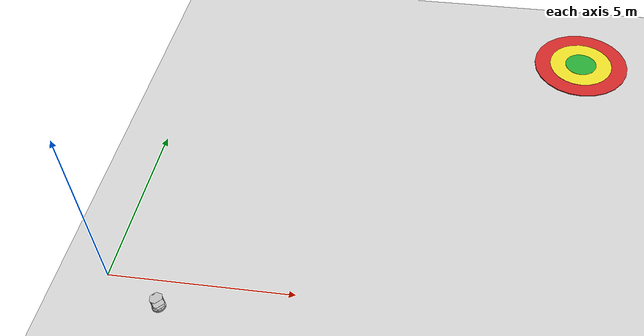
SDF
<sdf version="1.6">
 <world name="default">
  <light name="sun" type="directional">
   <pose>0 0 10 0 -0 0</pose>
   <diffuse>0.8 0.8 0.8 1</diffuse>
   <specular>0.2 0.2 0.2 1</specular>
   <attenuation>
    <range>1000</range>
    <constant>0.9</constant>
    <linear>0.01</linear>
    <quadratic>0.001</quadratic>
   </attenuation>
   <direction>0.5 0.1 -0.9</direction>
  </light>
  <model name="ground_plane">
   <static>1</static>
   <link name="link">
    <collision name="collision">
     <geometry><plane><normal>0 0 1</normal><size>100 100</size></plane></geometry>
     <surface><friction><ode><mu>100</mu><mu2>50</mu2></ode></friction></surface>
    </collision>
    <visual name="visual">
     <cast_shadows>0</cast_shadows>
     <geometry><plane><normal>0 0 1</normal><size>100 100</size></plane></geometry>
     <material>
      <script><uri>file://media/materials/scripts/gazebo.material</uri><name>Gazebo/Grey</name></script>
     </material>
    </visual>
    <velocity_decay><linear>0</linear><angular>0</angular></velocity_decay>
   </link>
  </model>
  <scene><ambient>0.4 0.4 0.4 1</ambient><background>0.7 0.7 0.7 1</background><shadows>0</shadows></scene>
  <physics name="default_physics" default="0" type="ode">
   <max_step_size>0.01</max_step_size>
   <real_time_factor>1</real_time_factor>
   <real_time_update_rate>0</real_time_update_rate>
  </physics>
  <gravity>0 0 -9.8</gravity>
  <magnetic_field>6e-06 2.3e-05 -4.2e-05</magnetic_field>
  <atmosphere type="adiabatic"/>
  <spherical_coordinates>
   <surface_model>EARTH_WGS84</surface_model>
   <latitude_deg>0</latitude_deg>
   <longitude_deg>0</longitude_deg>
   <elevation>0</elevation>
   <heading_deg>0</heading_deg>
  </spherical_coordinates>
  <model name="mobile_base">
   <link name="base_footprint">
    <inertial>
     <pose>-0.002635 -4.1e-05 0.129325 0 -0 0</pose>
     <mass>4.6983</mass>
     <inertia>
      <ixx>0.136646</ixx>
      <ixy>-2.51804e-05</ixy>
      <ixz>0.0108184</ixz>
      <iyy>0.132302</iyy>
      <iyz>4.89416e-05</iyz>
      <izz>0.0741649</izz>
     </inertia>
    </inertial>
    <collision name="base_footprint_fixed_joint_lump__base_link_collision">
     <pose>0 0 0.06969 0 -0 0</pose>
     <geometry><cylinder><length>0.10938</length><radius>0.178</radius></cylinder></geometry>
     <surface><friction><ode><mu>0.3</mu><mu2>0.3</mu2></ode></friction></surface>
    </collision>
    <collision name="base_footprint_fixed_joint_lump__camera_link_collision_1">
     <pose>-0.087 -0.0015 0.2972 0 -0 0</pose>
     <geometry><box><size>0.073 0.276 0.072</size></box></geometry>
    </collision>
    <collision name="base_footprint_fixed_joint_lump__caster_back_link_collision_2">
     <pose>-0.135 0 0.0192 -1.5708 0 0</pose>
     <geometry><cylinder><length>0.0176</length><radius>0.017</radius></cylinder></geometry>
     <surface>
      <contact><ode><kp>1e+06</kp><kd>100</kd><max_vel>1</max_vel><min_depth>0.001</min_depth></ode></contact>
      <friction><ode><mu>0</mu><mu2>0</mu2></ode></friction>
     </surface>
    </collision>
    <collision name="base_footprint_fixed_joint_lump__caster_front_link_collision_3">
     <pose>0.115 0 0.0172 -1.5708 0 0</pose>
     <geometry><cylinder><length>0.0176</length><radius>0.017</radius></cylinder></geometry>
     <surface>
      <contact><ode><kp>1e+06</kp><kd>100</kd><max_vel>1</max_vel><min_depth>0.001</min_depth></ode></contact>
      <friction><ode><mu>0</mu><mu2>0</mu2></ode></friction>
     </surface>
    </collision>
    <collision name="base_footprint_fixed_joint_lump__mount_asus_xtion_pro_link_collision_4">
     <pose>-0.1024 0 0.2822 0 -0 0</pose>
     <geometry><box><size>0.033 0.276 0.012</size></box></geometry>
    </collision>
    <collision name="base_footprint_fixed_joint_lump__plate_bottom_link_collision_5">
     <pose>0 0 0.1408 0 -0 0</pose>
     <geometry><cylinder><length>0.006</length><radius>0.17</radius></cylinder></geometry>
    </collision>
    <collision name="base_footprint_fixed_joint_lump__plate_middle_link_collision_6">
     <pose>0 0 0.1976 0 -0 0</pose>
     <geometry><cylinder><length>0.006</length><radius>0.17</radius></cylinder></geometry>
    </collision>
    <collision name="base_footprint_fixed_joint_lump__plate_top_link_collision_7">
     <pose>0 0 0.4068 0 -0 0</pose>
     <geometry><cylinder><length>0.006</length><radius>0.17</radius></cylinder></geometry>
    </collision>
    <collision name="base_footprint_fixed_joint_lump__pole_bottom_0_link_collision_8">
     <pose>0.12 0.082 0.113 0 -0 0</pose>
     <geometry><cylinder><length>0.0492</length><radius>0.006</radius></cylinder></geometry>
    </collision>
    <collision name="base_footprint_fixed_joint_lump__pole_bottom_1_link_collision_9">
     <pose>0.055 0.12 0.113 0 -0 0</pose>
     <geometry><cylinder><length>0.0492</length><radius>0.006</radius></cylinder></geometry>
    </collision>
    <collision name="base_footprint_fixed_joint_lump__pole_bottom_2_link_collision_10">
     <pose>-0.055 0.12 0.113 0 -0 0</pose>
     <geometry><cylinder><length>0.0492</length><radius>0.006</radius></cylinder></geometry>
    </collision>
    <collision name="base_footprint_fixed_joint_lump__pole_bottom_3_link_collision_11">
     <pose>0.12 -0.082 0.113 0 -0 0</pose>
     <geometry><cylinder><length>0.0492</length><radius>0.006</radius></cylinder></geometry>
    </collision>
    <collision name="base_footprint_fixed_joint_lump__pole_bottom_4_link_collision_12">
     <pose>0.055 -0.12 0.113 0 -0 0</pose>
     <geometry><cylinder><length>0.0492</length><radius>0.006</radius></cylinder></geometry>
    </collision>
    <collision name="base_footprint_fixed_joint_lump__pole_bottom_5_link_collision_13">
     <pose>-0.055 -0.12 0.113 0 -0 0</pose>
     <geometry><cylinder><length>0.0492</length><radius>0.006</radius></cylinder></geometry>
    </collision>
    <collision name="base_footprint_fixed_joint_lump__pole_kinect_0_link_collision_14">
     <pose>-0.1024 0.098 0.2474 0 -0 0</pose>
     <geometry><cylinder><length>0.0936</length><radius>0.006</radius></cylinder></geometry>
    </collision>
    <collision name="base_footprint_fixed_joint_lump__pole_kinect_1_link_collision_15">
     <pose>-0.1024 -0.098 0.2474 0 -0 0</pose>
     <geometry><cylinder><length>0.0936</length><radius>0.006</radius></cylinder></geometry>
    </collision>
    <collision name="base_footprint_fixed_joint_lump__pole_middle_0_link_collision_16">
     <pose>0.0381 0.1505 0.1742 0 -0 0</pose>
     <geometry><cylinder><length>0.0608</length><radius>0.006</radius></cylinder></geometry>
    </collision>
    <collision name="base_footprint_fixed_joint_lump__pole_middle_1_link_collision_17">
     <pose>0.0381 -0.1505 0.1742 0 -0 0</pose>
     <geometry><cylinder><length>0.0608</length><radius>0.006</radius></cylinder></geometry>
    </collision>
    <collision name="base_footprint_fixed_joint_lump__pole_middle_2_link_collision_18">
     <pose>-0.0381 0.1505 0.1742 0 -0 0</pose>
     <geometry><cylinder><length>0.0608</length><radius>0.006</radius></cylinder></geometry>
    </collision>
    <collision name="base_footprint_fixed_joint_lump__pole_middle_3_link_collision_19">
     <pose>-0.0381 -0.1505 0.1742 0 -0 0</pose>
     <geometry><cylinder><length>0.0608</length><radius>0.006</radius></cylinder></geometry>
    </collision>
    <collision name="base_footprint_fixed_joint_lump__pole_top_0_link_collision_20">
     <pose>0.0381 0.1505 0.3022 0 -0 0</pose>
     <geometry><cylinder><length>0.2032</length><radius>0.006</radius></cylinder></geometry>
    </collision>
    <collision name="base_footprint_fixed_joint_lump__pole_top_1_link_collision_21">
     <pose>0.0381 -0.1505 0.3022 0 -0 0</pose>
     <geometry><cylinder><length>0.2032</length><radius>0.006</radius></cylinder></geometry>
    </collision>
    <collision name="base_footprint_fixed_joint_lump__pole_top_2_link_collision_22">
     <pose>-0.0381 0.1505 0.3022 0 -0 0</pose>
     <geometry><cylinder><length>0.2032</length><radius>0.006</radius></cylinder></geometry>
    </collision>
    <collision name="base_footprint_fixed_joint_lump__pole_top_3_link_collision_23">
     <pose>-0.0381 -0.1505 0.3022 0 -0 0</pose>
     <geometry><cylinder><length>0.2032</length><radius>0.006</radius></cylinder></geometry>
    </collision>
    <visual name="base_footprint_fixed_joint_lump__base_link_visual">
     <pose>0.001 0 0.06219 0 -0 0</pose>
     <geometry>
      <mesh><scale>1 1 1</scale><uri>/opt/ros/kinetic/share/kobuki_description/meshes/main_body.dae</uri></mesh>
     </geometry>
     <material><script><uri>__default__</uri><name>__default__</name></script></material>
    </visual>
    <visual name="base_footprint_fixed_joint_lump__camera_link_visual_1">
     <pose>-0.102 0.002 0.3012 0 -0 0</pose>
     <geometry>
      <mesh>
       <scale>1 1 1</scale>
       <uri>/opt/ros/kinetic/share/turtlebot_description/meshes/sensors/xtion_pro_camera.dae</uri>
      </mesh>
     </geometry>
     <material><script><uri>__default__</uri><name>__default__</name></script></material>
    </visual>
    <visual name="base_footprint_fixed_joint_lump__mount_asus_xtion_pro_link_visual_2">
     <pose>-0.1024 0 0.2822 -1.5708 0 0</pose>
     <geometry>
      <mesh>
       <scale>1 1 1</scale>
       <uri>/opt/ros/kinetic/share/turtlebot_description/meshes/sensors/xtion_pro_stack.dae</uri>
      </mesh>
     </geometry>
    </visual>
    <visual name="base_footprint_fixed_joint_lump__plate_bottom_link_visual_3">
     <pose>0.02364 0 0.1408 0 -0 0</pose>
     <geometry>
      <mesh>
       <scale>1 1 1</scale>
       <uri>/opt/ros/kinetic/share/turtlebot_description/meshes/stacks/hexagons/plate_bottom.dae</uri>
      </mesh>
     </geometry>
    </visual>
    <visual name="base_footprint_fixed_joint_lump__plate_middle_link_visual_4">
     <pose>-0.01364 0 0.1976 0 -0 0</pose>
     <geometry>
      <mesh>
       <scale>1 1 1</scale>
       <uri>/opt/ros/kinetic/share/turtlebot_description/meshes/stacks/hexagons/plate_middle.dae</uri>
      </mesh>
     </geometry>
    </visual>
    <visual name="base_footprint_fixed_joint_lump__plate_top_link_visual_5">
     <pose>-0.01364 0 0.4068 0 -0 0</pose>
     <geometry>
      <mesh>
       <scale>1 1 1</scale>
       <uri>/opt/ros/kinetic/share/turtlebot_description/meshes/stacks/hexagons/plate_top.dae</uri>
      </mesh>
     </geometry>
    </visual>
    <visual name="base_footprint_fixed_joint_lump__pole_bottom_0_link_visual_6">
     <pose>0.12 0.082 0.113 0 -0 0</pose>
     <geometry>
      <mesh>
       <scale>1 1 1</scale>
       <uri>/opt/ros/kinetic/share/turtlebot_description/meshes/stacks/hexagons/pole_bottom.dae</uri>
      </mesh>
     </geometry>
    </visual>
    <visual name="base_footprint_fixed_joint_lump__pole_bottom_1_link_visual_7">
     <pose>0.055 0.12 0.113 0 -0 0</pose>
     <geometry>
      <mesh>
       <scale>1 1 1</scale>
       <uri>/opt/ros/kinetic/share/turtlebot_description/meshes/stacks/hexagons/pole_bottom.dae</uri>
      </mesh>
     </geometry>
    </visual>
    <visual name="base_footprint_fixed_joint_lump__pole_bottom_2_link_visual_8">
     <pose>-0.055 0.12 0.113 0 -0 0</pose>
     <geometry>
      <mesh>
       <scale>1 1 1</scale>
       <uri>/opt/ros/kinetic/share/turtlebot_description/meshes/stacks/hexagons/pole_bottom.dae</uri>
      </mesh>
     </geometry>
    </visual>
    <visual name="base_footprint_fixed_joint_lump__pole_bottom_3_link_visual_9">
     <pose>0.12 -0.082 0.113 0 -0 0</pose>
     <geometry>
      <mesh>
       <scale>1 1 1</scale>
       <uri>/opt/ros/kinetic/share/turtlebot_description/meshes/stacks/hexagons/pole_bottom.dae</uri>
      </mesh>
     </geometry>
    </visual>
    <visual name="base_footprint_fixed_joint_lump__pole_bottom_4_link_visual_10">
     <pose>0.055 -0.12 0.113 0 -0 0</pose>
     <geometry>
      <mesh>
       <scale>1 1 1</scale>
       <uri>/opt/ros/kinetic/share/turtlebot_description/meshes/stacks/hexagons/pole_bottom.dae</uri>
      </mesh>
     </geometry>
    </visual>
    <visual name="base_footprint_fixed_joint_lump__pole_bottom_5_link_visual_11">
     <pose>-0.055 -0.12 0.113 0 -0 0</pose>
     <geometry>
      <mesh>
       <scale>1 1 1</scale>
       <uri>/opt/ros/kinetic/share/turtlebot_description/meshes/stacks/hexagons/pole_bottom.dae</uri>
      </mesh>
     </geometry>
    </visual>
    <visual name="base_footprint_fixed_joint_lump__pole_kinect_0_link_visual_12">
     <pose>-0.1024 0.098 0.2374 0 -0 0</pose>
     <geometry>
      <mesh>
       <scale>1 1 1</scale>
       <uri>/opt/ros/kinetic/share/turtlebot_description/meshes/sensors/sensor_pole.dae</uri>
      </mesh>
     </geometry>
    </visual>
    <visual name="base_footprint_fixed_joint_lump__pole_kinect_1_link_visual_13">
     <pose>-0.1024 -0.098 0.2374 0 -0 0</pose>
     <geometry>
      <mesh>
       <scale>1 1 1</scale>
       <uri>/opt/ros/kinetic/share/turtlebot_description/meshes/sensors/sensor_pole.dae</uri>
      </mesh>
     </geometry>
    </visual>
    <visual name="base_footprint_fixed_joint_lump__pole_middle_0_link_visual_14">
     <pose>0.0381 0.1505 0.1742 3.14159 -0 3.14159</pose>
     <geometry>
      <mesh>
       <scale>1 1 1</scale>
       <uri>/opt/ros/kinetic/share/turtlebot_description/meshes/stacks/hexagons/pole_middle.dae</uri>
      </mesh>
     </geometry>
    </visual>
    <visual name="base_footprint_fixed_joint_lump__pole_middle_1_link_visual_15">
     <pose>0.0381 -0.1505 0.1742 3.14159 -0 3.14159</pose>
     <geometry>
      <mesh>
       <scale>1 1 1</scale>
       <uri>/opt/ros/kinetic/share/turtlebot_description/meshes/stacks/hexagons/pole_middle.dae</uri>
      </mesh>
     </geometry>
    </visual>
    <visual name="base_footprint_fixed_joint_lump__pole_middle_2_link_visual_16">
     <pose>-0.0381 0.1505 0.1742 3.14159 -0 3.14159</pose>
     <geometry>
      <mesh>
       <scale>1 1 1</scale>
       <uri>/opt/ros/kinetic/share/turtlebot_description/meshes/stacks/hexagons/pole_middle.dae</uri>
      </mesh>
     </geometry>
    </visual>
    <visual name="base_footprint_fixed_joint_lump__pole_middle_3_link_visual_17">
     <pose>-0.0381 -0.1505 0.1742 3.14159 -0 3.14159</pose>
     <geometry>
      <mesh>
       <scale>1 1 1</scale>
       <uri>/opt/ros/kinetic/share/turtlebot_description/meshes/stacks/hexagons/pole_middle.dae</uri>
      </mesh>
     </geometry>
    </visual>
    <visual name="base_footprint_fixed_joint_lump__pole_top_0_link_visual_18">
     <pose>0.0381 0.1505 0.3022 0 -0 0</pose>
     <geometry>
      <mesh>
       <scale>1 1 1</scale>
       <uri>/opt/ros/kinetic/share/turtlebot_description/meshes/stacks/hexagons/pole_top.dae</uri>
      </mesh>
     </geometry>
    </visual>
    <visual name="base_footprint_fixed_joint_lump__pole_top_1_link_visual_19">
     <pose>0.0381 -0.1505 0.3022 0 -0 0</pose>
     <geometry>
      <mesh>
       <scale>1 1 1</scale>
       <uri>/opt/ros/kinetic/share/turtlebot_description/meshes/stacks/hexagons/pole_top.dae</uri>
      </mesh>
     </geometry>
    </visual>
    <visual name="base_footprint_fixed_joint_lump__pole_top_2_link_visual_20">
     <pose>-0.0381 0.1505 0.3022 0 -0 0</pose>
     <geometry>
      <mesh>
       <scale>1 1 1</scale>
       <uri>/opt/ros/kinetic/share/turtlebot_description/meshes/stacks/hexagons/pole_top.dae</uri>
      </mesh>
     </geometry>
    </visual>
    <visual name="base_footprint_fixed_joint_lump__pole_top_3_link_visual_21">
     <pose>-0.0381 -0.1505 0.3022 0 -0 0</pose>
     <geometry>
      <mesh>
       <scale>1 1 1</scale>
       <uri>/opt/ros/kinetic/share/turtlebot_description/meshes/stacks/hexagons/pole_top.dae</uri>
      </mesh>
     </geometry>
    </visual>
    <sensor name="bumpers" type="contact">
     <always_on>1</always_on>
     <update_rate>50</update_rate>
     <visualize>1</visualize>
     <contact><collision>base_footprint_collision_base_link</collision><topic>__default_topic__</topic></contact>
     <pose>0 0 0.0102 0 -0 0</pose>
    </sensor>
    <sensor name="camera" type="depth">
     <always_on>1</always_on>
     <update_rate>20</update_rate>
     <camera name="__default__">
      <horizontal_fov>1.0472</horizontal_fov>
      <image><format>B8G8R8</format><width>640</width><height>480</height></image>
      <clip><near>0.05</near><far>8</far></clip>
     </camera>
     <plugin name="kinect_camera_controller" filename="libgazebo_ros_openni_kinect.so">
      <cameraName>camera</cameraName>
      <alwaysOn>true</alwaysOn>
      <updateRate>10</updateRate>
      <imageTopicName>rgb/image_raw</imageTopicName>
      <depthImageTopicName>depth/image_raw</depthImageTopicName>
      <pointCloudTopicName>depth/points</pointCloudTopicName>
      <cameraInfoTopicName>rgb/camera_info</cameraInfoTopicName>
      <depthImageCameraInfoTopicName>depth/camera_info</depthImageCameraInfoTopicName>
      <frameName>camera_depth_optical_frame</frameName>
      <baseline>0.1</baseline>
      <distortion_k1>0.0</distortion_k1>
      <distortion_k2>0.0</distortion_k2>
      <distortion_k3>0.0</distortion_k3>
      <distortion_t1>0.0</distortion_t1>
      <distortion_t2>0.0</distortion_t2>
      <pointCloudCutoff>0.4</pointCloudCutoff>
      <robotNamespace>/</robotNamespace>
     </plugin>
     <pose>-0.087 -0.0015 0.2972 0 -0 0</pose>
    </sensor>
    <sensor name="cliff_sensor_front" type="ray">
     <always_on>1</always_on>
     <update_rate>50</update_rate>
     <visualize>1</visualize>
     <ray>
      <scan>
       <horizontal>
        <samples>50</samples>
        <resolution>1</resolution>
        <min_angle>-0.0436</min_angle>
        <max_angle>0.0436</max_angle>
       </horizontal>
       <vertical><samples>1</samples><min_angle>0</min_angle><max_angle>0</max_angle></vertical>
      </scan>
      <range><min>0.01</min><max>0.15</max><resolution>1</resolution></range>
     </ray>
     <pose>0.156 0 0.0316 3.14159 1.57079 3.14159</pose>
    </sensor>
    <sensor name="cliff_sensor_left" type="ray">
     <always_on>1</always_on>
     <update_rate>50</update_rate>
     <visualize>1</visualize>
     <ray>
      <scan>
       <horizontal>
        <samples>50</samples>
        <resolution>1</resolution>
        <min_angle>-0.0436</min_angle>
        <max_angle>0.0436</max_angle>
       </horizontal>
       <vertical><samples>1</samples><min_angle>0</min_angle><max_angle>0</max_angle></vertical>
      </scan>
      <range><min>0.01</min><max>0.15</max><resolution>1</resolution></range>
     </ray>
     <pose>0.08734 0.13601 0.0316 3.14159 1.57079 3.14159</pose>
    </sensor>
    <sensor name="cliff_sensor_right" type="ray">
     <always_on>1</always_on>
     <update_rate>50</update_rate>
     <visualize>1</visualize>
     <ray>
      <scan>
       <horizontal>
        <samples>50</samples>
        <resolution>1</resolution>
        <min_angle>-0.0436</min_angle>
        <max_angle>0.0436</max_angle>
       </horizontal>
       <vertical><samples>1</samples><min_angle>0</min_angle><max_angle>0</max_angle></vertical>
      </scan>
      <range><min>0.01</min><max>0.15</max><resolution>1</resolution></range>
     </ray>
     <pose>0.085 -0.13601 0.0316 3.14159 1.57079 3.14159</pose>
    </sensor>
    <sensor name="imu" type="imu">
     <always_on>1</always_on>
     <update_rate>50</update_rate>
     <visualize>0</visualize>
     <imu>
      <angular_velocity>
       <x>
        <noise type="gaussian">
         <mean>0</mean>
         <stddev>1.96e-06</stddev>
         <bias_mean>0</bias_mean>
         <bias_stddev>0</bias_stddev>
        </noise>
       </x>
       <y>
        <noise type="gaussian">
         <mean>0</mean>
         <stddev>1.96e-06</stddev>
         <bias_mean>0</bias_mean>
         <bias_stddev>0</bias_stddev>
        </noise>
       </y>
       <z>
        <noise type="gaussian">
         <mean>0</mean>
         <stddev>1.96e-06</stddev>
         <bias_mean>0</bias_mean>
         <bias_stddev>0</bias_stddev>
        </noise>
       </z>
      </angular_velocity>
      <linear_acceleration>
       <x>
        <noise type="gaussian">
         <mean>0</mean>
         <stddev>0.017</stddev>
         <bias_mean>0.1</bias_mean>
         <bias_stddev>0.001</bias_stddev>
        </noise>
       </x>
       <y>
        <noise type="gaussian">
         <mean>0</mean>
         <stddev>0.017</stddev>
         <bias_mean>0.1</bias_mean>
         <bias_stddev>0.001</bias_stddev>
        </noise>
       </y>
       <z>
        <noise type="gaussian">
         <mean>0</mean>
         <stddev>0.017</stddev>
         <bias_mean>0.1</bias_mean>
         <bias_stddev>0.001</bias_stddev>
        </noise>
       </z>
      </linear_acceleration>
     </imu>
     <pose>0.056 0.062 0.0304 0 -0 0</pose>
    </sensor>
    <sensor name="sonar2" type="ray">
     <always_on>1</always_on>
     <update_rate>10</update_rate>
     <visualize>1</visualize>
     <ray>
      <scan>
       <horizontal>
        <samples>40</samples>
        <resolution>0.5</resolution>
        <min_angle>-2.35619</min_angle>
        <max_angle>2.35619</max_angle>
       </horizontal>
       <vertical>
        <samples>1</samples>
        <resolution>1</resolution>
        <min_angle>-0.00872665</min_angle>
        <max_angle>0.00872665</max_angle>
       </vertical>
      </scan>
      <range><min>0.06</min><max>20</max><resolution>0.01</resolution></range>
     </ray>
     <plugin name="gazebo_ros_sonar2_controller" filename="librotors_gazebo_sonar_plugin.so">
      <gaussianNoise>0.005</gaussianNoise>
      <topicName>sonar_front</topicName>
      <frameId>sonar2_link</frameId>
      <robotNamespace>/</robotNamespace>
     </plugin>
     <plugin name="gazebo_ros_sonar2_controller" filename="libgazebo_ros_laser.so">
      <topicName>/scan</topicName>
      <frameName>sonar2_link</frameName>
      <robotNamespace>/</robotNamespace>
     </plugin>
     <pose>0 0 0.5102 0 -0 0</pose>
    </sensor>
   </link>
   <link name="wheel_left_link">
    <pose>0 0.115 0.0352 -1.5708 0 0</pose>
    <inertial>
     <mass>0.01</mass>
     <inertia><ixx>0.001</ixx><ixy>0</ixy><ixz>0</ixz><iyy>0.001</iyy><iyz>0</iyz><izz>0.001</izz></inertia>
    </inertial>
    <collision name="wheel_left_link_collision">
     <geometry><cylinder><length>0.0206</length><radius>0.0352</radius></cylinder></geometry>
     <surface>
      <contact><ode><kp>1e+06</kp><kd>100</kd><max_vel>1</max_vel><min_depth>0.001</min_depth></ode></contact>
      <friction><ode><mu>1</mu><mu2>1</mu2></ode></friction>
     </surface>
    </collision>
    <visual name="wheel_left_link_visual">
     <geometry>
      <mesh><scale>1 1 1</scale><uri>/opt/ros/kinetic/share/kobuki_description/meshes/wheel.dae</uri></mesh>
     </geometry>
     <material><script><uri>__default__</uri><name>__default__</name></script></material>
    </visual>
   </link>
   <joint name="wheel_left_joint" type="revolute">
    <child>wheel_left_link</child>
    <parent>base_footprint</parent>
    <axis>
     <xyz>0 1 0</xyz>
     <limit><lower>-1e+16</lower><upper>1e+16</upper></limit>
     <dynamics><spring_reference>0</spring_reference><spring_stiffness>0</spring_stiffness></dynamics>
     <use_parent_model_frame>1</use_parent_model_frame>
    </axis>
   </joint>
   <link name="wheel_right_link">
    <pose>0 -0.115 0.0352 -1.5708 0 0</pose>
    <inertial>
     <mass>0.01</mass>
     <inertia><ixx>0.001</ixx><ixy>0</ixy><ixz>0</ixz><iyy>0.001</iyy><iyz>0</iyz><izz>0.001</izz></inertia>
    </inertial>
    <collision name="wheel_right_link_collision">
     <geometry><cylinder><length>0.0206</length><radius>0.035</radius></cylinder></geometry>
     <surface>
      <contact><ode><kp>1e+06</kp><kd>100</kd><max_vel>1</max_vel><min_depth>0.001</min_depth></ode></contact>
      <friction><ode><mu>1</mu><mu2>1</mu2></ode></friction>
     </surface>
    </collision>
    <visual name="wheel_right_link_visual">
     <geometry>
      <mesh><scale>1 1 1</scale><uri>/opt/ros/kinetic/share/kobuki_description/meshes/wheel.dae</uri></mesh>
     </geometry>
     <material><script><uri>__default__</uri><name>__default__</name></script></material>
    </visual>
   </link>
   <joint name="wheel_right_joint" type="revolute">
    <child>wheel_right_link</child>
    <parent>base_footprint</parent>
    <axis>
     <xyz>0 1 0</xyz>
     <limit><lower>-1e+16</lower><upper>1e+16</upper></limit>
     <dynamics><spring_reference>0</spring_reference><spring_stiffness>0</spring_stiffness></dynamics>
     <use_parent_model_frame>1</use_parent_model_frame>
    </axis>
   </joint>
   <static>0</static>
   <plugin name="kobuki_controller" filename="libgazebo_ros_kobuki.so">
    <publish_tf>1</publish_tf>
    <left_wheel_joint_name>wheel_left_joint</left_wheel_joint_name>
    <right_wheel_joint_name>wheel_right_joint</right_wheel_joint_name>
    <wheel_separation>.230</wheel_separation>
    <wheel_diameter>0.070</wheel_diameter>
    <torque>1.0</torque>
    <velocity_command_timeout>0.6</velocity_command_timeout>
    <cliff_sensor_left_name>cliff_sensor_left</cliff_sensor_left_name>
    <cliff_sensor_center_name>cliff_sensor_front</cliff_sensor_center_name>
    <cliff_sensor_right_name>cliff_sensor_right</cliff_sensor_right_name>
    <cliff_detection_threshold>0.04</cliff_detection_threshold>
    <bumper_name>bumpers</bumper_name>
    <imu_name>imu</imu_name>
    <robotNamespace>/</robotNamespace>
   </plugin>
   <pose>1.64708 -0.783634 -0.001131 2.7e-05 -0.008002 -0.767021</pose>
  </model>
  <model name="Target">
   <static>1</static>
   <link name="green">
    <visual name="visual">
     <geometry><cylinder><radius>0.5</radius><length>0.05</length></cylinder></geometry>
     <material>
      <script><uri>file://media/materials/scripts/gazebo.material</uri><name>Gazebo/Green</name></script>
      <ambient>1 1 1 1</ambient>
     </material>
     <cast_shadows>0</cast_shadows>
    </visual>
   </link>
   <link name="yellow">
    <visual name="visual">
     <geometry><cylinder><radius>1</radius><length>0.04</length></cylinder></geometry>
     <material>
      <script><uri>file://media/materials/scripts/gazebo.material</uri><name>Gazebo/Yellow</name></script>
      <ambient>1 1 1 1</ambient>
     </material>
     <cast_shadows>0</cast_shadows>
    </visual>
   </link>
   <link name="red">
    <visual name="visual">
     <geometry><cylinder><radius>1.5</radius><length>0.03</length></cylinder></geometry>
     <material>
      <script><uri>file://media/materials/scripts/gazebo.material</uri><name>Gazebo/Red</name></script>
      <ambient>1 1 1 1</ambient>
     </material>
     <cast_shadows>0</cast_shadows>
    </visual>
   </link>
   <pose>12.3868 9.98421 0 0 -0 0</pose>
  </model>
 </world>
</sdf>
